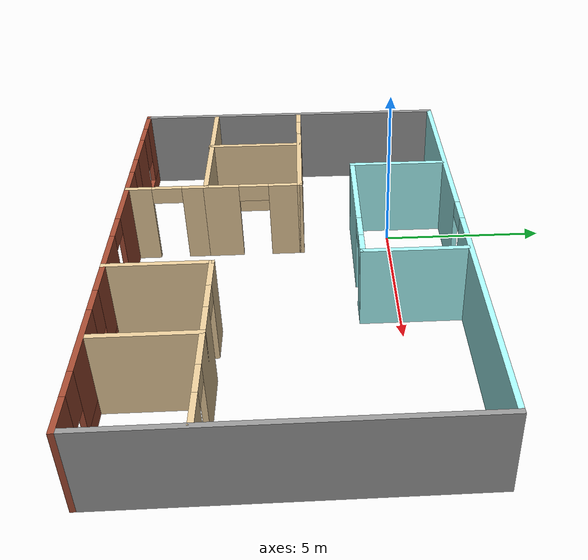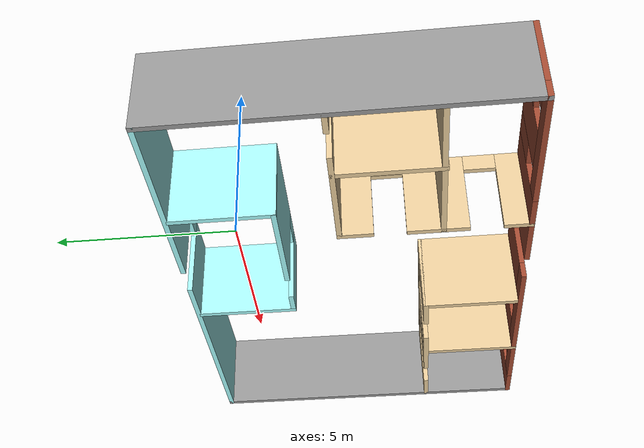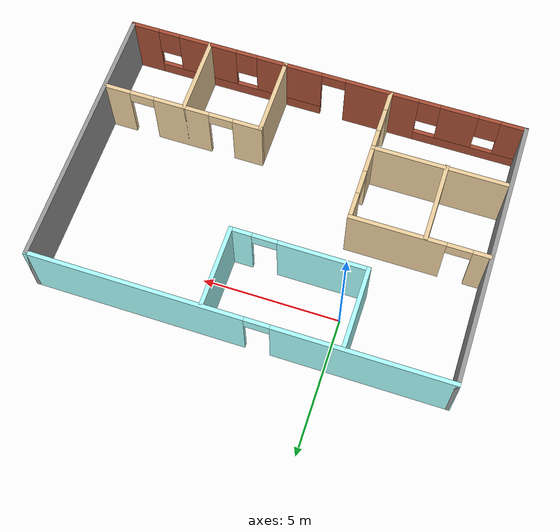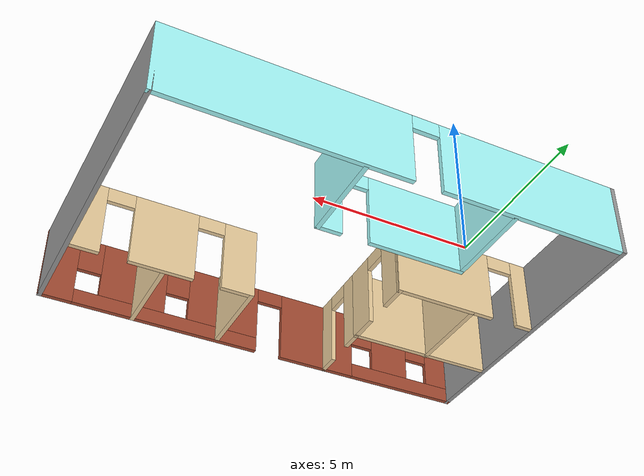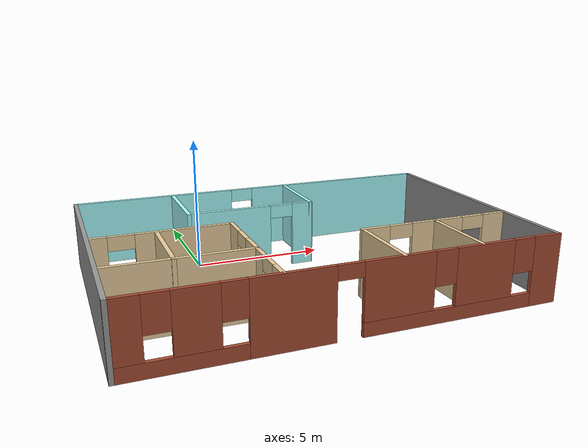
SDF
<?xml version='1.0'?>
<sdf version='1.6'>
  <model name='myBuilding'>
    <pose frame=''>3.07059 -3.08034 0 0 -0 0</pose>
    <link name='Wall_0'>
      <pose frame=''>0 4.925 0 0 -0 0</pose>
      <visual name='Wall_0_Visual_0'>
        <pose frame=''>-4.33106 0 1.25 0 -0 0</pose>
        <geometry>
          <box>
            <size>6.33787 0.15 2.5</size>
          </box>
        </geometry>
        <material>
          <script>
            <uri>file://media/materials/scripts/gazebo.material</uri>
            <name>Gazebo/Grey</name>
          </script>
          <ambient>0.666667 1 1 1</ambient>
        </material>
        <meta>
          <layer>0</layer>
        </meta>
      </visual>
      <collision name='Wall_0_Collision_0'>
        <geometry>
          <box>
            <size>6.33787 0.15 2.5</size>
          </box>
        </geometry>
        <pose frame=''>-4.33106 0 1.25 0 -0 0</pose>
      </collision>
      <visual name='Wall_0_Visual_1'>
        <pose frame=''>3.61894 0 1.25 0 -0 0</pose>
        <geometry>
          <box>
            <size>7.76213 0.15 2.5</size>
          </box>
        </geometry>
        <material>
          <script>
            <uri>file://media/materials/scripts/gazebo.material</uri>
            <name>Gazebo/Grey</name>
          </script>
          <ambient>0.666667 1 1 1</ambient>
        </material>
        <meta>
          <layer>0</layer>
        </meta>
      </visual>
      <collision name='Wall_0_Collision_1'>
        <geometry>
          <box>
            <size>7.76213 0.15 2.5</size>
          </box>
        </geometry>
        <pose frame=''>3.61894 0 1.25 0 -0 0</pose>
      </collision>
      <visual name='Wall_0_Visual_2'>
        <pose frame=''>-0.712128 0 2.25 0 -0 0</pose>
        <geometry>
          <box>
            <size>0.9 0.15 0.5</size>
          </box>
        </geometry>
        <material>
          <script>
            <uri>file://media/materials/scripts/gazebo.material</uri>
            <name>Gazebo/Grey</name>
          </script>
          <ambient>0.666667 1 1 1</ambient>
        </material>
        <meta>
          <layer>0</layer>
        </meta>
      </visual>
      <collision name='Wall_0_Collision_2'>
        <geometry>
          <box>
            <size>0.9 0.15 0.5</size>
          </box>
        </geometry>
        <pose frame=''>-0.712128 0 2.25 0 -0 0</pose>
      </collision>
    </link>
    <link name='Wall_1'>
      <collision name='Wall_1_Collision'>
        <geometry>
          <box>
            <size>10 0.15 2.5</size>
          </box>
        </geometry>
        <pose frame=''>0 0 1.25 0 -0 0</pose>
      </collision>
      <visual name='Wall_1_Visual'>
        <pose frame=''>0 0 1.25 0 -0 0</pose>
        <geometry>
          <box>
            <size>10 0.15 2.5</size>
          </box>
        </geometry>
        <material>
          <script>
            <uri>file://media/materials/scripts/gazebo.material</uri>
            <name>Gazebo/Grey</name>
          </script>
          <ambient>1 1 1 1</ambient>
        </material>
        <meta>
          <layer>0</layer>
        </meta>
      </visual>
      <pose frame=''>7.425 0 0 0 0 -1.5708</pose>
    </link>
    <link name='Wall_10'>
      <pose frame=''>4.43348 -2.07452 0 0 -0 3.14159</pose>
      <visual name='Wall_10_Visual_0'>
        <pose frame=''>-2.50364 0 1.25 0 -0 0</pose>
        <geometry>
          <box>
            <size>0.992723 0.15 2.5</size>
          </box>
        </geometry>
        <material>
          <script>
            <uri>file://media/materials/scripts/gazebo.material</uri>
            <name>Gazebo/Grey</name>
          </script>
          <ambient>0.921569 0.807843 0.615686 1</ambient>
        </material>
        <meta>
          <layer>0</layer>
        </meta>
      </visual>
      <collision name='Wall_10_Collision_0'>
        <geometry>
          <box>
            <size>0.992723 0.15 2.5</size>
          </box>
        </geometry>
        <pose frame=''>-2.50364 0 1.25 0 -0 0</pose>
      </collision>
      <visual name='Wall_10_Visual_1'>
        <pose frame=''>-0.058816 0 1.25 0 -0 0</pose>
        <geometry>
          <box>
            <size>2.09692 0.15 2.5</size>
          </box>
        </geometry>
        <material>
          <script>
            <uri>file://media/materials/scripts/gazebo.material</uri>
            <name>Gazebo/Grey</name>
          </script>
          <ambient>0.921569 0.807843 0.615686 1</ambient>
        </material>
        <meta>
          <layer>0</layer>
        </meta>
      </visual>
      <collision name='Wall_10_Collision_1'>
        <geometry>
          <box>
            <size>2.09692 0.15 2.5</size>
          </box>
        </geometry>
        <pose frame=''>-0.058816 0 1.25 0 -0 0</pose>
      </collision>
      <visual name='Wall_10_Visual_2'>
        <pose frame=''>2.44482 0 1.25 0 -0 0</pose>
        <geometry>
          <box>
            <size>1.11035 0.15 2.5</size>
          </box>
        </geometry>
        <material>
          <script>
            <uri>file://media/materials/scripts/gazebo.material</uri>
            <name>Gazebo/Grey</name>
          </script>
          <ambient>0.921569 0.807843 0.615686 1</ambient>
        </material>
        <meta>
          <layer>0</layer>
        </meta>
      </visual>
      <collision name='Wall_10_Collision_2'>
        <geometry>
          <box>
            <size>1.11035 0.15 2.5</size>
          </box>
        </geometry>
        <pose frame=''>2.44482 0 1.25 0 -0 0</pose>
      </collision>
      <visual name='Wall_10_Visual_3'>
        <pose frame=''>-1.55728 0 2.25 0 -0 0</pose>
        <geometry>
          <box>
            <size>0.9 0.15 0.5</size>
          </box>
        </geometry>
        <material>
          <script>
            <uri>file://media/materials/scripts/gazebo.material</uri>
            <name>Gazebo/Grey</name>
          </script>
          <ambient>0.921569 0.807843 0.615686 1</ambient>
        </material>
        <meta>
          <layer>0</layer>
        </meta>
      </visual>
      <collision name='Wall_10_Collision_3'>
        <geometry>
          <box>
            <size>0.9 0.15 0.5</size>
          </box>
        </geometry>
        <pose frame=''>-1.55728 0 2.25 0 -0 0</pose>
      </collision>
      <visual name='Wall_10_Visual_4'>
        <pose frame=''>1.43965 0 2.25 0 -0 0</pose>
        <geometry>
          <box>
            <size>0.9 0.15 0.5</size>
          </box>
        </geometry>
        <material>
          <script>
            <uri>file://media/materials/scripts/gazebo.material</uri>
            <name>Gazebo/Grey</name>
          </script>
          <ambient>0.921569 0.807843 0.615686 1</ambient>
        </material>
        <meta>
          <layer>0</layer>
        </meta>
      </visual>
      <collision name='Wall_10_Collision_4'>
        <geometry>
          <box>
            <size>0.9 0.15 0.5</size>
          </box>
        </geometry>
        <pose frame=''>1.43965 0 2.25 0 -0 0</pose>
      </collision>
    </link>
    <link name='Wall_11'>
      <collision name='Wall_11_Collision'>
        <geometry>
          <box>
            <size>3 0.15 2.5</size>
          </box>
        </geometry>
        <pose frame=''>0 0 1.25 0 -0 0</pose>
      </collision>
      <visual name='Wall_11_Visual'>
        <pose frame=''>0 0 1.25 0 -0 0</pose>
        <geometry>
          <box>
            <size>3 0.15 2.5</size>
          </box>
        </geometry>
        <material>
          <script>
            <uri>file://media/materials/scripts/gazebo.material</uri>
            <name>Gazebo/Grey</name>
          </script>
          <ambient>0.921569 0.807843 0.615686 1</ambient>
        </material>
        <meta>
          <layer>0</layer>
        </meta>
      </visual>
      <pose frame=''>1.50848 -3.49952 0 0 0 -1.5708</pose>
    </link>
    <link name='Wall_13'>
      <collision name='Wall_13_Collision'>
        <geometry>
          <box>
            <size>3 0.15 2.5</size>
          </box>
        </geometry>
        <pose frame=''>0 0 1.25 0 -0 0</pose>
      </collision>
      <visual name='Wall_13_Visual'>
        <pose frame=''>0 0 1.25 0 -0 0</pose>
        <geometry>
          <box>
            <size>3 0.15 2.5</size>
          </box>
        </geometry>
        <material>
          <script>
            <uri>file://media/materials/scripts/gazebo.material</uri>
            <name>Gazebo/Grey</name>
          </script>
          <ambient>0.921569 0.807843 0.615686 1</ambient>
        </material>
        <meta>
          <layer>0</layer>
        </meta>
      </visual>
      <pose frame=''>4.40178 -3.49952 0 0 0 -1.5708</pose>
    </link>
    <link name='Wall_15'>
      <collision name='Wall_15_Collision'>
        <geometry>
          <box>
            <size>3 0.15 2.5</size>
          </box>
        </geometry>
        <pose frame=''>0 0 1.25 0 -0 0</pose>
      </collision>
      <visual name='Wall_15_Visual'>
        <pose frame=''>0 0 1.25 0 -0 0</pose>
        <geometry>
          <box>
            <size>3 0.15 2.5</size>
          </box>
        </geometry>
        <material>
          <script>
            <uri>file://media/materials/scripts/gazebo.material</uri>
            <name>Gazebo/Grey</name>
          </script>
          <ambient>0.666667 1 1 1</ambient>
        </material>
        <meta>
          <layer>0</layer>
        </meta>
      </visual>
      <pose frame=''>-3.63217 3.39545 0 0 0 -1.5708</pose>
    </link>
    <link name='Wall_16'>
      <pose frame=''>-1.20717 1.97045 0 0 -0 0</pose>
      <visual name='Wall_16_Visual_0'>
        <pose frame=''>-0.85996 0 1.25 0 -0 0</pose>
        <geometry>
          <box>
            <size>3.23382 0.15 2.5</size>
          </box>
        </geometry>
        <material>
          <script>
            <uri>file://media/materials/scripts/gazebo.material</uri>
            <name>Gazebo/Grey</name>
          </script>
          <ambient>0.666667 1 1 1</ambient>
        </material>
        <meta>
          <layer>0</layer>
        </meta>
      </visual>
      <collision name='Wall_16_Collision_0'>
        <geometry>
          <box>
            <size>3.23382 0.15 2.5</size>
          </box>
        </geometry>
        <pose frame=''>-0.85996 0 1.25 0 -0 0</pose>
      </collision>
      <visual name='Wall_16_Visual_1'>
        <pose frame=''>2.06691 0 1.25 0 -0 0</pose>
        <geometry>
          <box>
            <size>0.819919 0.15 2.5</size>
          </box>
        </geometry>
        <material>
          <script>
            <uri>file://media/materials/scripts/gazebo.material</uri>
            <name>Gazebo/Grey</name>
          </script>
          <ambient>0.666667 1 1 1</ambient>
        </material>
        <meta>
          <layer>0</layer>
        </meta>
      </visual>
      <collision name='Wall_16_Collision_1'>
        <geometry>
          <box>
            <size>0.819919 0.15 2.5</size>
          </box>
        </geometry>
        <pose frame=''>2.06691 0 1.25 0 -0 0</pose>
      </collision>
      <visual name='Wall_16_Visual_2'>
        <pose frame=''>1.20695 0 2.25 0 -0 0</pose>
        <geometry>
          <box>
            <size>0.9 0.15 0.5</size>
          </box>
        </geometry>
        <material>
          <script>
            <uri>file://media/materials/scripts/gazebo.material</uri>
            <name>Gazebo/Grey</name>
          </script>
          <ambient>0.666667 1 1 1</ambient>
        </material>
        <meta>
          <layer>0</layer>
        </meta>
      </visual>
      <collision name='Wall_16_Collision_2'>
        <geometry>
          <box>
            <size>0.9 0.15 0.5</size>
          </box>
        </geometry>
        <pose frame=''>1.20695 0 2.25 0 -0 0</pose>
      </collision>
    </link>
    <link name='Wall_17'>
      <collision name='Wall_17_Collision'>
        <geometry>
          <box>
            <size>3 0.15 2.5</size>
          </box>
        </geometry>
        <pose frame=''>0 0 1.25 0 -0 0</pose>
      </collision>
      <visual name='Wall_17_Visual'>
        <pose frame=''>0 0 1.25 0 -0 0</pose>
        <geometry>
          <box>
            <size>3 0.15 2.5</size>
          </box>
        </geometry>
        <material>
          <script>
            <uri>file://media/materials/scripts/gazebo.material</uri>
            <name>Gazebo/Grey</name>
          </script>
          <ambient>0.666667 1 1 1</ambient>
        </material>
        <meta>
          <layer>0</layer>
        </meta>
      </visual>
      <pose frame=''>1.21783 3.39545 0 0 -0 1.5708</pose>
    </link>
    <link name='Wall_19'>
      <pose frame=''>-2.47706 -1.13554 0 0 -0 1.5708</pose>
      <visual name='Wall_19_Visual_0'>
        <pose frame=''>-0.961767 0 1.25 0 -0 0</pose>
        <geometry>
          <box>
            <size>1.07647 0.15 2.5</size>
          </box>
        </geometry>
        <material>
          <script>
            <uri>file://media/materials/scripts/gazebo.material</uri>
            <name>Gazebo/Grey</name>
          </script>
          <ambient>0.921569 0.807843 0.615686 1</ambient>
        </material>
        <meta>
          <layer>0</layer>
        </meta>
      </visual>
      <collision name='Wall_19_Collision_0'>
        <geometry>
          <box>
            <size>1.07647 0.15 2.5</size>
          </box>
        </geometry>
        <pose frame=''>-0.961767 0 1.25 0 -0 0</pose>
      </collision>
      <visual name='Wall_19_Visual_1'>
        <pose frame=''>0.988233 0 1.25 0 -0 0</pose>
        <geometry>
          <box>
            <size>1.02354 0.15 2.5</size>
          </box>
        </geometry>
        <material>
          <script>
            <uri>file://media/materials/scripts/gazebo.material</uri>
            <name>Gazebo/Grey</name>
          </script>
          <ambient>0.921569 0.807843 0.615686 1</ambient>
        </material>
        <meta>
          <layer>0</layer>
        </meta>
      </visual>
      <collision name='Wall_19_Collision_1'>
        <geometry>
          <box>
            <size>1.02354 0.15 2.5</size>
          </box>
        </geometry>
        <pose frame=''>0.988233 0 1.25 0 -0 0</pose>
      </collision>
      <visual name='Wall_19_Visual_2'>
        <pose frame=''>0.026465 0 2.25 0 -0 0</pose>
        <geometry>
          <box>
            <size>0.9 0.15 0.5</size>
          </box>
        </geometry>
        <material>
          <script>
            <uri>file://media/materials/scripts/gazebo.material</uri>
            <name>Gazebo/Grey</name>
          </script>
          <ambient>0.921569 0.807843 0.615686 1</ambient>
        </material>
        <meta>
          <layer>0</layer>
        </meta>
      </visual>
      <collision name='Wall_19_Collision_2'>
        <geometry>
          <box>
            <size>0.9 0.15 0.5</size>
          </box>
        </geometry>
        <pose frame=''>0.026465 0 2.25 0 -0 0</pose>
      </collision>
    </link>
    <link name='Wall_2'>
      <pose frame=''>0 -4.925 0 0 -0 3.14159</pose>
      <visual name='Wall_2_Visual_0'>
        <pose frame=''>-6.95543 0 1.25 0 -0 0</pose>
        <geometry>
          <box>
            <size>1.08913 0.15 2.5</size>
          </box>
        </geometry>
        <material>
          <script>
            <uri>file://media/materials/scripts/gazebo.material</uri>
            <name>Gazebo/Bricks</name>
          </script>
          <ambient>1 1 1 1</ambient>
        </material>
        <meta>
          <layer>0</layer>
        </meta>
      </visual>
      <collision name='Wall_2_Collision_0'>
        <geometry>
          <box>
            <size>1.08913 0.15 2.5</size>
          </box>
        </geometry>
        <pose frame=''>-6.95543 0 1.25 0 -0 0</pose>
      </collision>
      <visual name='Wall_2_Visual_1'>
        <pose frame=''>2.16013 0 1.25 0 -0 0</pose>
        <geometry>
          <box>
            <size>2.73022 0.15 2.5</size>
          </box>
        </geometry>
        <material>
          <script>
            <uri>file://media/materials/scripts/gazebo.material</uri>
            <name>Gazebo/Bricks</name>
          </script>
          <ambient>1 1 1 1</ambient>
        </material>
        <meta>
          <layer>0</layer>
        </meta>
      </visual>
      <collision name='Wall_2_Collision_1'>
        <geometry>
          <box>
            <size>2.73022 0.15 2.5</size>
          </box>
        </geometry>
        <pose frame=''>2.16013 0 1.25 0 -0 0</pose>
      </collision>
      <visual name='Wall_2_Visual_2'>
        <pose frame=''>-3.25792 0 0.25 0 -0 0</pose>
        <geometry>
          <box>
            <size>6.30589 0.15 0.5</size>
          </box>
        </geometry>
        <material>
          <script>
            <uri>file://media/materials/scripts/gazebo.material</uri>
            <name>Gazebo/Bricks</name>
          </script>
          <ambient>1 1 1 1</ambient>
        </material>
        <meta>
          <layer>0</layer>
        </meta>
      </visual>
      <collision name='Wall_2_Collision_2'>
        <geometry>
          <box>
            <size>6.30589 0.15 0.5</size>
          </box>
        </geometry>
        <pose frame=''>-3.25792 0 0.25 0 -0 0</pose>
      </collision>
      <visual name='Wall_2_Visual_3'>
        <pose frame=''>5.51262 0 0.25 0 -0 0</pose>
        <geometry>
          <box>
            <size>3.97476 0.15 0.5</size>
          </box>
        </geometry>
        <material>
          <script>
            <uri>file://media/materials/scripts/gazebo.material</uri>
            <name>Gazebo/Bricks</name>
          </script>
          <ambient>1 1 1 1</ambient>
        </material>
        <meta>
          <layer>0</layer>
        </meta>
      </visual>
      <collision name='Wall_2_Collision_3'>
        <geometry>
          <box>
            <size>3.97476 0.15 0.5</size>
          </box>
        </geometry>
        <pose frame=''>5.51262 0 0.25 0 -0 0</pose>
      </collision>
      <visual name='Wall_2_Visual_4'>
        <pose frame=''>-4.50235 0 1.5 0 -0 0</pose>
        <geometry>
          <box>
            <size>2.21704 0.15 2</size>
          </box>
        </geometry>
        <material>
          <script>
            <uri>file://media/materials/scripts/gazebo.material</uri>
            <name>Gazebo/Bricks</name>
          </script>
          <ambient>1 1 1 1</ambient>
        </material>
        <meta>
          <layer>0</layer>
        </meta>
      </visual>
      <collision name='Wall_2_Collision_4'>
        <geometry>
          <box>
            <size>2.21704 0.15 2</size>
          </box>
        </geometry>
        <pose frame=''>-4.50235 0 1.5 0 -0 0</pose>
      </collision>
      <visual name='Wall_2_Visual_5'>
        <pose frame=''>-1.3494 0 1.5 0 -0 0</pose>
        <geometry>
          <box>
            <size>2.48885 0.15 2</size>
          </box>
        </geometry>
        <material>
          <script>
            <uri>file://media/materials/scripts/gazebo.material</uri>
            <name>Gazebo/Bricks</name>
          </script>
          <ambient>1 1 1 1</ambient>
        </material>
        <meta>
          <layer>0</layer>
        </meta>
      </visual>
      <collision name='Wall_2_Collision_5'>
        <geometry>
          <box>
            <size>2.48885 0.15 2</size>
          </box>
        </geometry>
        <pose frame=''>-1.3494 0 1.5 0 -0 0</pose>
      </collision>
      <visual name='Wall_2_Visual_6'>
        <pose frame=''>-1.3494 0 1.5 0 -0 0</pose>
        <geometry>
          <box>
            <size>2.48885 0.15 2</size>
          </box>
        </geometry>
        <material>
          <script>
            <uri>file://media/materials/scripts/gazebo.material</uri>
            <name>Gazebo/Bricks</name>
          </script>
          <ambient>1 1 1 1</ambient>
        </material>
        <meta>
          <layer>0</layer>
        </meta>
      </visual>
      <collision name='Wall_2_Collision_6'>
        <geometry>
          <box>
            <size>2.48885 0.15 2</size>
          </box>
        </geometry>
        <pose frame=''>-1.3494 0 1.5 0 -0 0</pose>
      </collision>
      <visual name='Wall_2_Visual_7'>
        <pose frame=''>5.02143 0 1.5 0 -0 0</pose>
        <geometry>
          <box>
            <size>1.39238 0.15 2</size>
          </box>
        </geometry>
        <material>
          <script>
            <uri>file://media/materials/scripts/gazebo.material</uri>
            <name>Gazebo/Bricks</name>
          </script>
          <ambient>1 1 1 1</ambient>
        </material>
        <meta>
          <layer>0</layer>
        </meta>
      </visual>
      <collision name='Wall_2_Collision_7'>
        <geometry>
          <box>
            <size>1.39238 0.15 2</size>
          </box>
        </geometry>
        <pose frame=''>5.02143 0 1.5 0 -0 0</pose>
      </collision>
      <visual name='Wall_2_Visual_8'>
        <pose frame=''>7.00881 0 1.5 0 -0 0</pose>
        <geometry>
          <box>
            <size>0.982382 0.15 2</size>
          </box>
        </geometry>
        <material>
          <script>
            <uri>file://media/materials/scripts/gazebo.material</uri>
            <name>Gazebo/Bricks</name>
          </script>
          <ambient>1 1 1 1</ambient>
        </material>
        <meta>
          <layer>0</layer>
        </meta>
      </visual>
      <collision name='Wall_2_Collision_8'>
        <geometry>
          <box>
            <size>0.982382 0.15 2</size>
          </box>
        </geometry>
        <pose frame=''>7.00881 0 1.5 0 -0 0</pose>
      </collision>
      <visual name='Wall_2_Visual_9'>
        <pose frame=''>-6.01087 0 1.9 0 -0 0</pose>
        <geometry>
          <box>
            <size>0.8 0.15 1.2</size>
          </box>
        </geometry>
        <material>
          <script>
            <uri>file://media/materials/scripts/gazebo.material</uri>
            <name>Gazebo/Bricks</name>
          </script>
          <ambient>1 1 1 1</ambient>
        </material>
        <meta>
          <layer>0</layer>
        </meta>
      </visual>
      <collision name='Wall_2_Collision_9'>
        <geometry>
          <box>
            <size>0.8 0.15 1.2</size>
          </box>
        </geometry>
        <pose frame=''>-6.01087 0 1.9 0 -0 0</pose>
      </collision>
      <visual name='Wall_2_Visual_10'>
        <pose frame=''>3.92524 0 1.9 0 -0 0</pose>
        <geometry>
          <box>
            <size>0.8 0.15 1.2</size>
          </box>
        </geometry>
        <material>
          <script>
            <uri>file://media/materials/scripts/gazebo.material</uri>
            <name>Gazebo/Bricks</name>
          </script>
          <ambient>1 1 1 1</ambient>
        </material>
        <meta>
          <layer>0</layer>
        </meta>
      </visual>
      <collision name='Wall_2_Collision_10'>
        <geometry>
          <box>
            <size>0.8 0.15 1.2</size>
          </box>
        </geometry>
        <pose frame=''>3.92524 0 1.9 0 -0 0</pose>
      </collision>
      <visual name='Wall_2_Visual_11'>
        <pose frame=''>-2.99383 0 1.9 0 -0 0</pose>
        <geometry>
          <box>
            <size>0.8 0.15 1.2</size>
          </box>
        </geometry>
        <material>
          <script>
            <uri>file://media/materials/scripts/gazebo.material</uri>
            <name>Gazebo/Bricks</name>
          </script>
          <ambient>1 1 1 1</ambient>
        </material>
        <meta>
          <layer>0</layer>
        </meta>
      </visual>
      <collision name='Wall_2_Collision_11'>
        <geometry>
          <box>
            <size>0.8 0.15 1.2</size>
          </box>
        </geometry>
        <pose frame=''>-2.99383 0 1.9 0 -0 0</pose>
      </collision>
      <visual name='Wall_2_Visual_12'>
        <pose frame=''>6.11762 0 1.9 0 -0 0</pose>
        <geometry>
          <box>
            <size>0.8 0.15 1.2</size>
          </box>
        </geometry>
        <material>
          <script>
            <uri>file://media/materials/scripts/gazebo.material</uri>
            <name>Gazebo/Bricks</name>
          </script>
          <ambient>1 1 1 1</ambient>
        </material>
        <meta>
          <layer>0</layer>
        </meta>
      </visual>
      <collision name='Wall_2_Collision_12'>
        <geometry>
          <box>
            <size>0.8 0.15 1.2</size>
          </box>
        </geometry>
        <pose frame=''>6.11762 0 1.9 0 -0 0</pose>
      </collision>
      <visual name='Wall_2_Visual_13'>
        <pose frame=''>0.345023 0 2.25 0 -0 0</pose>
        <geometry>
          <box>
            <size>0.9 0.15 0.5</size>
          </box>
        </geometry>
        <material>
          <script>
            <uri>file://media/materials/scripts/gazebo.material</uri>
            <name>Gazebo/Bricks</name>
          </script>
          <ambient>1 1 1 1</ambient>
        </material>
        <meta>
          <layer>0</layer>
        </meta>
      </visual>
      <collision name='Wall_2_Collision_13'>
        <geometry>
          <box>
            <size>0.9 0.15 0.5</size>
          </box>
        </geometry>
        <pose frame=''>0.345023 0 2.25 0 -0 0</pose>
      </collision>
      <visual name='Wall_2_Visual_14'>
        <pose frame=''>0.345023 0 2.25 0 -0 0</pose>
        <geometry>
          <box>
            <size>0.9 0.15 0.5</size>
          </box>
        </geometry>
        <material>
          <script>
            <uri>file://media/materials/scripts/gazebo.material</uri>
            <name>Gazebo/Bricks</name>
          </script>
          <ambient>1 1 1 1</ambient>
        </material>
        <meta>
          <layer>0</layer>
        </meta>
      </visual>
      <collision name='Wall_2_Collision_14'>
        <geometry>
          <box>
            <size>0.9 0.15 0.5</size>
          </box>
        </geometry>
        <pose frame=''>0.345023 0 2.25 0 -0 0</pose>
      </collision>
    </link>
    <link name='Wall_20'>
      <pose frame=''>-4.91062 0.289438 0 0 0 -3.14158</pose>
      <visual name='Wall_20_Visual_0'>
        <pose frame=''>-0.77521 0 1.25 0 -0 0</pose>
        <geometry>
          <box>
            <size>3.46669 0.15 2.5</size>
          </box>
        </geometry>
        <material>
          <script>
            <uri>file://media/materials/scripts/gazebo.material</uri>
            <name>Gazebo/Grey</name>
          </script>
          <ambient>0.921569 0.807843 0.615686 1</ambient>
        </material>
        <meta>
          <layer>0</layer>
        </meta>
      </visual>
      <collision name='Wall_20_Collision_0'>
        <geometry>
          <box>
            <size>3.46669 0.15 2.5</size>
          </box>
        </geometry>
        <pose frame=''>-0.77521 0 1.25 0 -0 0</pose>
      </collision>
      <visual name='Wall_20_Visual_1'>
        <pose frame=''>2.18335 0 1.25 0 -0 0</pose>
        <geometry>
          <box>
            <size>0.65042 0.15 2.5</size>
          </box>
        </geometry>
        <material>
          <script>
            <uri>file://media/materials/scripts/gazebo.material</uri>
            <name>Gazebo/Grey</name>
          </script>
          <ambient>0.921569 0.807843 0.615686 1</ambient>
        </material>
        <meta>
          <layer>0</layer>
        </meta>
      </visual>
      <collision name='Wall_20_Collision_1'>
        <geometry>
          <box>
            <size>0.65042 0.15 2.5</size>
          </box>
        </geometry>
        <pose frame=''>2.18335 0 1.25 0 -0 0</pose>
      </collision>
      <visual name='Wall_20_Visual_2'>
        <pose frame=''>1.40813 0 2.25 0 -0 0</pose>
        <geometry>
          <box>
            <size>0.9 0.15 0.5</size>
          </box>
        </geometry>
        <material>
          <script>
            <uri>file://media/materials/scripts/gazebo.material</uri>
            <name>Gazebo/Grey</name>
          </script>
          <ambient>0.921569 0.807843 0.615686 1</ambient>
        </material>
        <meta>
          <layer>0</layer>
        </meta>
      </visual>
      <collision name='Wall_20_Collision_2'>
        <geometry>
          <box>
            <size>0.9 0.15 0.5</size>
          </box>
        </geometry>
        <pose frame=''>1.40813 0 2.25 0 -0 0</pose>
      </collision>
    </link>
    <link name='Wall_22'>
      <collision name='Wall_22_Collision'>
        <geometry>
          <box>
            <size>3 0.15 2.5</size>
          </box>
        </geometry>
        <pose frame=''>0 0 1.25 0 -0 0</pose>
      </collision>
      <visual name='Wall_22_Visual'>
        <pose frame=''>0 0 1.25 0 -0 0</pose>
        <geometry>
          <box>
            <size>3 0.15 2.5</size>
          </box>
        </geometry>
        <material>
          <script>
            <uri>file://media/materials/scripts/gazebo.material</uri>
            <name>Gazebo/Grey</name>
          </script>
          <ambient>0.921569 0.807843 0.615686 1</ambient>
        </material>
        <meta>
          <layer>0</layer>
        </meta>
      </visual>
      <pose frame=''>-5.13205 -1.16635 0 0 0 -1.5708</pose>
    </link>
    <link name='Wall_5'>
      <collision name='Wall_5_Collision'>
        <geometry>
          <box>
            <size>10 0.15 2.5</size>
          </box>
        </geometry>
        <pose frame=''>0 0 1.25 0 -0 0</pose>
      </collision>
      <visual name='Wall_5_Visual'>
        <pose frame=''>0 0 1.25 0 -0 0</pose>
        <geometry>
          <box>
            <size>10 0.15 2.5</size>
          </box>
        </geometry>
        <material>
          <script>
            <uri>file://media/materials/scripts/gazebo.material</uri>
            <name>Gazebo/Grey</name>
          </script>
          <ambient>1 1 1 1</ambient>
        </material>
        <meta>
          <layer>0</layer>
        </meta>
      </visual>
      <pose frame=''>-7.425 0 0 0 -0 1.5708</pose>
    </link>
    <link name='Wall_7'>
      <pose frame=''>-2.47706 -3.73554 0 0 -0 1.5708</pose>
      <visual name='Wall_7_Visual_0'>
        <pose frame=''>-0.848199 0 1.25 0 -0 0</pose>
        <geometry>
          <box>
            <size>0.803603 0.15 2.5</size>
          </box>
        </geometry>
        <material>
          <script>
            <uri>file://media/materials/scripts/gazebo.material</uri>
            <name>Gazebo/Grey</name>
          </script>
          <ambient>0.921569 0.807843 0.615686 1</ambient>
        </material>
        <meta>
          <layer>0</layer>
        </meta>
      </visual>
      <collision name='Wall_7_Collision_0'>
        <geometry>
          <box>
            <size>0.803603 0.15 2.5</size>
          </box>
        </geometry>
        <pose frame=''>-0.848199 0 1.25 0 -0 0</pose>
      </collision>
      <visual name='Wall_7_Visual_1'>
        <pose frame=''>0.851801 0 1.25 0 -0 0</pose>
        <geometry>
          <box>
            <size>0.796397 0.15 2.5</size>
          </box>
        </geometry>
        <material>
          <script>
            <uri>file://media/materials/scripts/gazebo.material</uri>
            <name>Gazebo/Grey</name>
          </script>
          <ambient>0.921569 0.807843 0.615686 1</ambient>
        </material>
        <meta>
          <layer>0</layer>
        </meta>
      </visual>
      <collision name='Wall_7_Collision_1'>
        <geometry>
          <box>
            <size>0.796397 0.15 2.5</size>
          </box>
        </geometry>
        <pose frame=''>0.851801 0 1.25 0 -0 0</pose>
      </collision>
      <visual name='Wall_7_Visual_2'>
        <pose frame=''>0.003603 0 2.25 0 -0 0</pose>
        <geometry>
          <box>
            <size>0.9 0.15 0.5</size>
          </box>
        </geometry>
        <material>
          <script>
            <uri>file://media/materials/scripts/gazebo.material</uri>
            <name>Gazebo/Grey</name>
          </script>
          <ambient>0.921569 0.807843 0.615686 1</ambient>
        </material>
        <meta>
          <layer>0</layer>
        </meta>
      </visual>
      <collision name='Wall_7_Collision_2'>
        <geometry>
          <box>
            <size>0.9 0.15 0.5</size>
          </box>
        </geometry>
        <pose frame=''>0.003603 0 2.25 0 -0 0</pose>
      </collision>
    </link>
    <link name='Wall_8'>
      <collision name='Wall_8_Collision'>
        <geometry>
          <box>
            <size>5 0.15 2.5</size>
          </box>
        </geometry>
        <pose frame=''>0 0 1.25 0 -0 0</pose>
      </collision>
      <visual name='Wall_8_Visual'>
        <pose frame=''>0 0 1.25 0 -0 0</pose>
        <geometry>
          <box>
            <size>5 0.15 2.5</size>
          </box>
        </geometry>
        <material>
          <script>
            <uri>file://media/materials/scripts/gazebo.material</uri>
            <name>Gazebo/Grey</name>
          </script>
          <ambient>0.921569 0.807843 0.615686 1</ambient>
        </material>
        <meta>
          <layer>0</layer>
        </meta>
      </visual>
      <pose frame=''>-4.90206 -2.56054 0 0 -0 3.14159</pose>
    </link>
    <static>1</static>
  </model>
</sdf>
